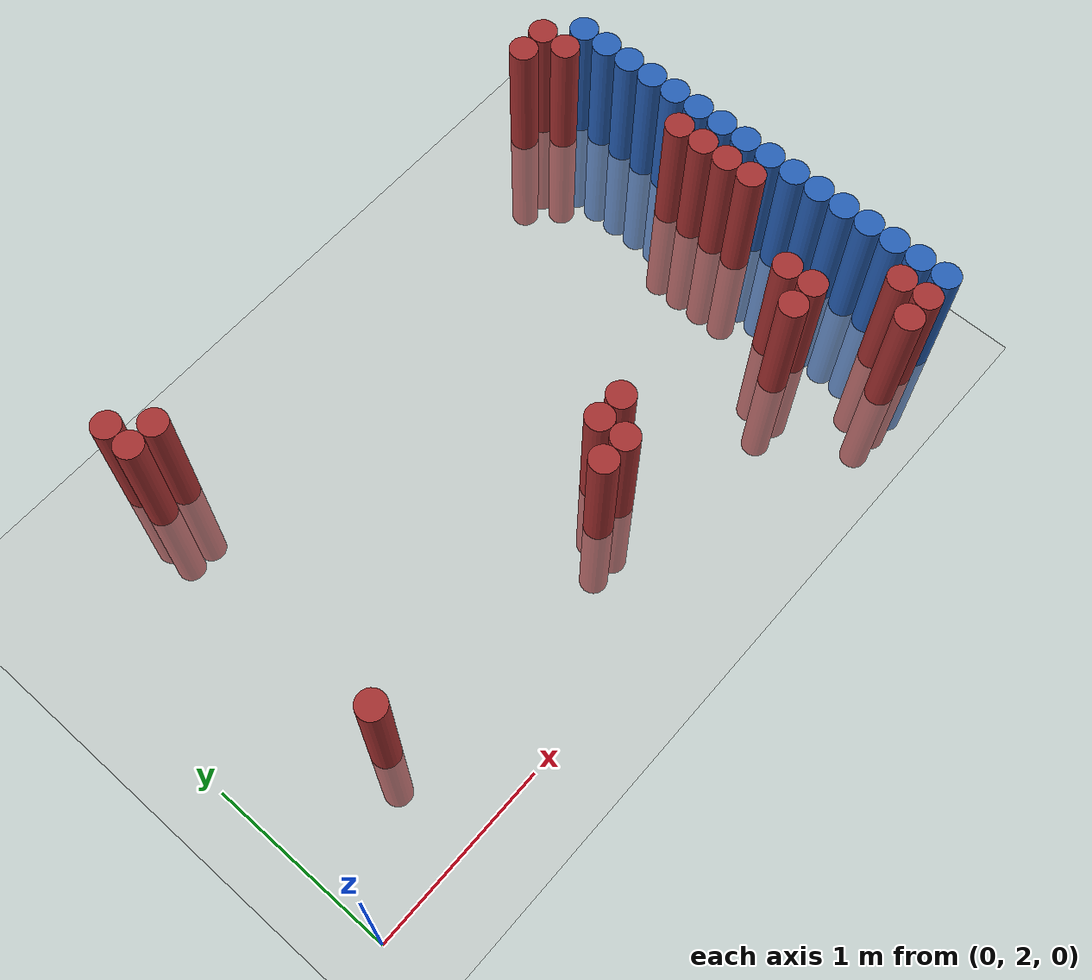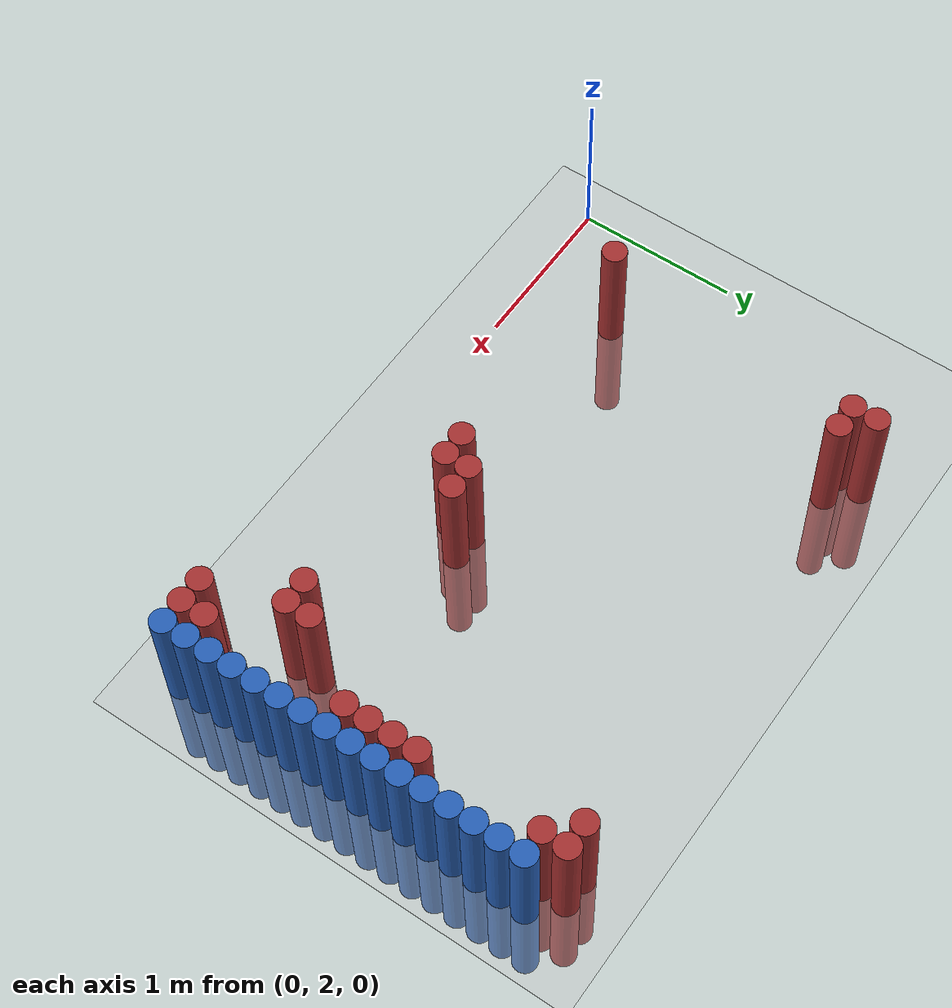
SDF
<sdf version="1.6">
 <world name="default">
  <model name="ground_plane">
   <static>1</static>
   <link name="link">
    <collision name="collision">
     <geometry><plane><normal>0 0 1</normal><size>100 100</size></plane></geometry>
     <surface><friction><ode><mu>100</mu><mu2>50</mu2></ode></friction></surface>
    </collision>
    <visual name="visual">
     <cast_shadows>0</cast_shadows>
     <geometry><plane><normal>0 0 1</normal><size>100 100</size></plane></geometry>
     <material>
      <script><uri>file://media/materials/scripts/gazebo.material</uri><name>Gazebo/Grey</name></script>
     </material>
    </visual>
   </link>
  </model>
  <model name="unit_cylinder_140">
   <static>1</static>
   <pose>3.925000 1.975000 0.000000 0.000000 0.000000 0.000000</pose>
   <link name="link">
    <inertial>
     <mass>1</mass>
     <inertia><ixx>0.145833</ixx><ixy>0</ixy><ixz>0</ixz><iyy>0.145833</iyy><iyz>0</iyz><izz>0.125</izz></inertia>
    </inertial>
    <collision name="collision">
     <geometry><cylinder><radius>0.075000</radius><length>1.5</length></cylinder></geometry>
    </collision>
    <visual name="visual">
     <geometry><cylinder><radius>0.075000</radius><length>1.5</length></cylinder></geometry>
     <material>
      <ambient>0.152000 0.379000 0.720000 1</ambient>
      <diffuse>0.152000 0.379000 0.720000 1</diffuse>
     </material>
     <material>
      <script><name>Gazebo/Grey</name><uri>file://media/materials/scripts/gazebo.material</uri></script>
     </material>
    </visual>
   </link>
  </model>
  <model name="unit_cylinder_142">
   <static>1</static>
   <pose>3.925000 2.125000 0.000000 0.000000 0.000000 0.000000</pose>
   <link name="link">
    <inertial>
     <mass>1</mass>
     <inertia><ixx>0.145833</ixx><ixy>0</ixy><ixz>0</ixz><iyy>0.145833</iyy><iyz>0</iyz><izz>0.125</izz></inertia>
    </inertial>
    <collision name="collision">
     <geometry><cylinder><radius>0.075000</radius><length>1.5</length></cylinder></geometry>
    </collision>
    <visual name="visual">
     <geometry><cylinder><radius>0.075000</radius><length>1.5</length></cylinder></geometry>
     <material>
      <ambient>0.152000 0.379000 0.720000 1</ambient>
      <diffuse>0.152000 0.379000 0.720000 1</diffuse>
     </material>
     <material>
      <script><name>Gazebo/Grey</name><uri>file://media/materials/scripts/gazebo.material</uri></script>
     </material>
    </visual>
   </link>
  </model>
  <model name="unit_cylinder_144">
   <static>1</static>
   <pose>3.925000 2.275000 0.000000 0.000000 0.000000 0.000000</pose>
   <link name="link">
    <inertial>
     <mass>1</mass>
     <inertia><ixx>0.145833</ixx><ixy>0</ixy><ixz>0</ixz><iyy>0.145833</iyy><iyz>0</iyz><izz>0.125</izz></inertia>
    </inertial>
    <collision name="collision">
     <geometry><cylinder><radius>0.075000</radius><length>1.5</length></cylinder></geometry>
    </collision>
    <visual name="visual">
     <geometry><cylinder><radius>0.075000</radius><length>1.5</length></cylinder></geometry>
     <material>
      <ambient>0.152000 0.379000 0.720000 1</ambient>
      <diffuse>0.152000 0.379000 0.720000 1</diffuse>
     </material>
     <material>
      <script><name>Gazebo/Grey</name><uri>file://media/materials/scripts/gazebo.material</uri></script>
     </material>
    </visual>
   </link>
  </model>
  <model name="unit_cylinder_146">
   <static>1</static>
   <pose>3.925000 2.425000 0.000000 0.000000 0.000000 0.000000</pose>
   <link name="link">
    <inertial>
     <mass>1</mass>
     <inertia><ixx>0.145833</ixx><ixy>0</ixy><ixz>0</ixz><iyy>0.145833</iyy><iyz>0</iyz><izz>0.125</izz></inertia>
    </inertial>
    <collision name="collision">
     <geometry><cylinder><radius>0.075000</radius><length>1.5</length></cylinder></geometry>
    </collision>
    <visual name="visual">
     <geometry><cylinder><radius>0.075000</radius><length>1.5</length></cylinder></geometry>
     <material>
      <ambient>0.152000 0.379000 0.720000 1</ambient>
      <diffuse>0.152000 0.379000 0.720000 1</diffuse>
     </material>
     <material>
      <script><name>Gazebo/Grey</name><uri>file://media/materials/scripts/gazebo.material</uri></script>
     </material>
    </visual>
   </link>
  </model>
  <model name="unit_cylinder_148">
   <static>1</static>
   <pose>3.925000 2.575000 0.000000 0.000000 0.000000 0.000000</pose>
   <link name="link">
    <inertial>
     <mass>1</mass>
     <inertia><ixx>0.145833</ixx><ixy>0</ixy><ixz>0</ixz><iyy>0.145833</iyy><iyz>0</iyz><izz>0.125</izz></inertia>
    </inertial>
    <collision name="collision">
     <geometry><cylinder><radius>0.075000</radius><length>1.5</length></cylinder></geometry>
    </collision>
    <visual name="visual">
     <geometry><cylinder><radius>0.075000</radius><length>1.5</length></cylinder></geometry>
     <material>
      <ambient>0.152000 0.379000 0.720000 1</ambient>
      <diffuse>0.152000 0.379000 0.720000 1</diffuse>
     </material>
     <material>
      <script><name>Gazebo/Grey</name><uri>file://media/materials/scripts/gazebo.material</uri></script>
     </material>
    </visual>
   </link>
  </model>
  <model name="unit_cylinder_150">
   <static>1</static>
   <pose>3.925000 2.725000 0.000000 0.000000 0.000000 0.000000</pose>
   <link name="link">
    <inertial>
     <mass>1</mass>
     <inertia><ixx>0.145833</ixx><ixy>0</ixy><ixz>0</ixz><iyy>0.145833</iyy><iyz>0</iyz><izz>0.125</izz></inertia>
    </inertial>
    <collision name="collision">
     <geometry><cylinder><radius>0.075000</radius><length>1.5</length></cylinder></geometry>
    </collision>
    <visual name="visual">
     <geometry><cylinder><radius>0.075000</radius><length>1.5</length></cylinder></geometry>
     <material>
      <ambient>0.152000 0.379000 0.720000 1</ambient>
      <diffuse>0.152000 0.379000 0.720000 1</diffuse>
     </material>
     <material>
      <script><name>Gazebo/Grey</name><uri>file://media/materials/scripts/gazebo.material</uri></script>
     </material>
    </visual>
   </link>
  </model>
  <model name="unit_cylinder_152">
   <static>1</static>
   <pose>3.925000 2.875000 0.000000 0.000000 0.000000 0.000000</pose>
   <link name="link">
    <inertial>
     <mass>1</mass>
     <inertia><ixx>0.145833</ixx><ixy>0</ixy><ixz>0</ixz><iyy>0.145833</iyy><iyz>0</iyz><izz>0.125</izz></inertia>
    </inertial>
    <collision name="collision">
     <geometry><cylinder><radius>0.075000</radius><length>1.5</length></cylinder></geometry>
    </collision>
    <visual name="visual">
     <geometry><cylinder><radius>0.075000</radius><length>1.5</length></cylinder></geometry>
     <material>
      <ambient>0.152000 0.379000 0.720000 1</ambient>
      <diffuse>0.152000 0.379000 0.720000 1</diffuse>
     </material>
     <material>
      <script><name>Gazebo/Grey</name><uri>file://media/materials/scripts/gazebo.material</uri></script>
     </material>
    </visual>
   </link>
  </model>
  <model name="unit_cylinder_154">
   <static>1</static>
   <pose>3.925000 3.025000 0.000000 0.000000 0.000000 0.000000</pose>
   <link name="link">
    <inertial>
     <mass>1</mass>
     <inertia><ixx>0.145833</ixx><ixy>0</ixy><ixz>0</ixz><iyy>0.145833</iyy><iyz>0</iyz><izz>0.125</izz></inertia>
    </inertial>
    <collision name="collision">
     <geometry><cylinder><radius>0.075000</radius><length>1.5</length></cylinder></geometry>
    </collision>
    <visual name="visual">
     <geometry><cylinder><radius>0.075000</radius><length>1.5</length></cylinder></geometry>
     <material>
      <ambient>0.152000 0.379000 0.720000 1</ambient>
      <diffuse>0.152000 0.379000 0.720000 1</diffuse>
     </material>
     <material>
      <script><name>Gazebo/Grey</name><uri>file://media/materials/scripts/gazebo.material</uri></script>
     </material>
    </visual>
   </link>
  </model>
  <model name="unit_cylinder_156">
   <static>1</static>
   <pose>3.925000 3.175000 0.000000 0.000000 0.000000 0.000000</pose>
   <link name="link">
    <inertial>
     <mass>1</mass>
     <inertia><ixx>0.145833</ixx><ixy>0</ixy><ixz>0</ixz><iyy>0.145833</iyy><iyz>0</iyz><izz>0.125</izz></inertia>
    </inertial>
    <collision name="collision">
     <geometry><cylinder><radius>0.075000</radius><length>1.5</length></cylinder></geometry>
    </collision>
    <visual name="visual">
     <geometry><cylinder><radius>0.075000</radius><length>1.5</length></cylinder></geometry>
     <material>
      <ambient>0.152000 0.379000 0.720000 1</ambient>
      <diffuse>0.152000 0.379000 0.720000 1</diffuse>
     </material>
     <material>
      <script><name>Gazebo/Grey</name><uri>file://media/materials/scripts/gazebo.material</uri></script>
     </material>
    </visual>
   </link>
  </model>
  <model name="unit_cylinder_158">
   <static>1</static>
   <pose>3.925000 3.325000 0.000000 0.000000 0.000000 0.000000</pose>
   <link name="link">
    <inertial>
     <mass>1</mass>
     <inertia><ixx>0.145833</ixx><ixy>0</ixy><ixz>0</ixz><iyy>0.145833</iyy><iyz>0</iyz><izz>0.125</izz></inertia>
    </inertial>
    <collision name="collision">
     <geometry><cylinder><radius>0.075000</radius><length>1.5</length></cylinder></geometry>
    </collision>
    <visual name="visual">
     <geometry><cylinder><radius>0.075000</radius><length>1.5</length></cylinder></geometry>
     <material>
      <ambient>0.152000 0.379000 0.720000 1</ambient>
      <diffuse>0.152000 0.379000 0.720000 1</diffuse>
     </material>
     <material>
      <script><name>Gazebo/Grey</name><uri>file://media/materials/scripts/gazebo.material</uri></script>
     </material>
    </visual>
   </link>
  </model>
  <model name="unit_cylinder_160">
   <static>1</static>
   <pose>3.925000 3.475000 0.000000 0.000000 0.000000 0.000000</pose>
   <link name="link">
    <inertial>
     <mass>1</mass>
     <inertia><ixx>0.145833</ixx><ixy>0</ixy><ixz>0</ixz><iyy>0.145833</iyy><iyz>0</iyz><izz>0.125</izz></inertia>
    </inertial>
    <collision name="collision">
     <geometry><cylinder><radius>0.075000</radius><length>1.5</length></cylinder></geometry>
    </collision>
    <visual name="visual">
     <geometry><cylinder><radius>0.075000</radius><length>1.5</length></cylinder></geometry>
     <material>
      <ambient>0.152000 0.379000 0.720000 1</ambient>
      <diffuse>0.152000 0.379000 0.720000 1</diffuse>
     </material>
     <material>
      <script><name>Gazebo/Grey</name><uri>file://media/materials/scripts/gazebo.material</uri></script>
     </material>
    </visual>
   </link>
  </model>
  <model name="unit_cylinder_162">
   <static>1</static>
   <pose>3.925000 3.625000 0.000000 0.000000 0.000000 0.000000</pose>
   <link name="link">
    <inertial>
     <mass>1</mass>
     <inertia><ixx>0.145833</ixx><ixy>0</ixy><ixz>0</ixz><iyy>0.145833</iyy><iyz>0</iyz><izz>0.125</izz></inertia>
    </inertial>
    <collision name="collision">
     <geometry><cylinder><radius>0.075000</radius><length>1.5</length></cylinder></geometry>
    </collision>
    <visual name="visual">
     <geometry><cylinder><radius>0.075000</radius><length>1.5</length></cylinder></geometry>
     <material>
      <ambient>0.152000 0.379000 0.720000 1</ambient>
      <diffuse>0.152000 0.379000 0.720000 1</diffuse>
     </material>
     <material>
      <script><name>Gazebo/Grey</name><uri>file://media/materials/scripts/gazebo.material</uri></script>
     </material>
    </visual>
   </link>
  </model>
  <model name="unit_cylinder_164">
   <static>1</static>
   <pose>3.925000 3.775000 0.000000 0.000000 0.000000 0.000000</pose>
   <link name="link">
    <inertial>
     <mass>1</mass>
     <inertia><ixx>0.145833</ixx><ixy>0</ixy><ixz>0</ixz><iyy>0.145833</iyy><iyz>0</iyz><izz>0.125</izz></inertia>
    </inertial>
    <collision name="collision">
     <geometry><cylinder><radius>0.075000</radius><length>1.5</length></cylinder></geometry>
    </collision>
    <visual name="visual">
     <geometry><cylinder><radius>0.075000</radius><length>1.5</length></cylinder></geometry>
     <material>
      <ambient>0.152000 0.379000 0.720000 1</ambient>
      <diffuse>0.152000 0.379000 0.720000 1</diffuse>
     </material>
     <material>
      <script><name>Gazebo/Grey</name><uri>file://media/materials/scripts/gazebo.material</uri></script>
     </material>
    </visual>
   </link>
  </model>
  <model name="unit_cylinder_166">
   <static>1</static>
   <pose>3.925000 3.925000 0.000000 0.000000 0.000000 0.000000</pose>
   <link name="link">
    <inertial>
     <mass>1</mass>
     <inertia><ixx>0.145833</ixx><ixy>0</ixy><ixz>0</ixz><iyy>0.145833</iyy><iyz>0</iyz><izz>0.125</izz></inertia>
    </inertial>
    <collision name="collision">
     <geometry><cylinder><radius>0.075000</radius><length>1.5</length></cylinder></geometry>
    </collision>
    <visual name="visual">
     <geometry><cylinder><radius>0.075000</radius><length>1.5</length></cylinder></geometry>
     <material>
      <ambient>0.152000 0.379000 0.720000 1</ambient>
      <diffuse>0.152000 0.379000 0.720000 1</diffuse>
     </material>
     <material>
      <script><name>Gazebo/Grey</name><uri>file://media/materials/scripts/gazebo.material</uri></script>
     </material>
    </visual>
   </link>
  </model>
  <model name="unit_cylinder_168">
   <static>1</static>
   <pose>3.925000 4.075000 0.000000 0.000000 0.000000 0.000000</pose>
   <link name="link">
    <inertial>
     <mass>1</mass>
     <inertia><ixx>0.145833</ixx><ixy>0</ixy><ixz>0</ixz><iyy>0.145833</iyy><iyz>0</iyz><izz>0.125</izz></inertia>
    </inertial>
    <collision name="collision">
     <geometry><cylinder><radius>0.075000</radius><length>1.5</length></cylinder></geometry>
    </collision>
    <visual name="visual">
     <geometry><cylinder><radius>0.075000</radius><length>1.5</length></cylinder></geometry>
     <material>
      <ambient>0.152000 0.379000 0.720000 1</ambient>
      <diffuse>0.152000 0.379000 0.720000 1</diffuse>
     </material>
     <material>
      <script><name>Gazebo/Grey</name><uri>file://media/materials/scripts/gazebo.material</uri></script>
     </material>
    </visual>
   </link>
  </model>
  <model name="unit_cylinder_170">
   <static>1</static>
   <pose>3.925000 4.225000 0.000000 0.000000 0.000000 0.000000</pose>
   <link name="link">
    <inertial>
     <mass>1</mass>
     <inertia><ixx>0.145833</ixx><ixy>0</ixy><ixz>0</ixz><iyy>0.145833</iyy><iyz>0</iyz><izz>0.125</izz></inertia>
    </inertial>
    <collision name="collision">
     <geometry><cylinder><radius>0.075000</radius><length>1.5</length></cylinder></geometry>
    </collision>
    <visual name="visual">
     <geometry><cylinder><radius>0.075000</radius><length>1.5</length></cylinder></geometry>
     <material>
      <ambient>0.152000 0.379000 0.720000 1</ambient>
      <diffuse>0.152000 0.379000 0.720000 1</diffuse>
     </material>
     <material>
      <script><name>Gazebo/Grey</name><uri>file://media/materials/scripts/gazebo.material</uri></script>
     </material>
    </visual>
   </link>
  </model>
  <model name="unit_cylinder_417">
   <static>1</static>
   <pose>0.625000 2.575000 0.000000 0.000000 0.000000 0.000000</pose>
   <link name="link">
    <inertial>
     <mass>1</mass>
     <inertia><ixx>0.145833</ixx><ixy>0</ixy><ixz>0</ixz><iyy>0.145833</iyy><iyz>0</iyz><izz>0.125</izz></inertia>
    </inertial>
    <collision name="collision">
     <geometry><cylinder><radius>0.075000</radius><length>1.5</length></cylinder></geometry>
    </collision>
    <visual name="visual">
     <geometry><cylinder><radius>0.075000</radius><length>1.5</length></cylinder></geometry>
     <material>
      <ambient>0.648000 0.192000 0.192000 1</ambient>
      <diffuse>0.648000 0.192000 0.192000 1</diffuse>
     </material>
     <material>
      <script><name>Gazebo/Grey</name><uri>file://media/materials/scripts/gazebo.material</uri></script>
     </material>
    </visual>
   </link>
  </model>
  <model name="unit_cylinder_421">
   <static>1</static>
   <pose>0.775000 4.225000 0.000000 0.000000 0.000000 0.000000</pose>
   <link name="link">
    <inertial>
     <mass>1</mass>
     <inertia><ixx>0.145833</ixx><ixy>0</ixy><ixz>0</ixz><iyy>0.145833</iyy><iyz>0</iyz><izz>0.125</izz></inertia>
    </inertial>
    <collision name="collision">
     <geometry><cylinder><radius>0.075000</radius><length>1.5</length></cylinder></geometry>
    </collision>
    <visual name="visual">
     <geometry><cylinder><radius>0.075000</radius><length>1.5</length></cylinder></geometry>
     <material>
      <ambient>0.648000 0.192000 0.192000 1</ambient>
      <diffuse>0.648000 0.192000 0.192000 1</diffuse>
     </material>
     <material>
      <script><name>Gazebo/Grey</name><uri>file://media/materials/scripts/gazebo.material</uri></script>
     </material>
    </visual>
   </link>
  </model>
  <model name="unit_cylinder_422">
   <static>1</static>
   <pose>0.775000 4.375000 0.000000 0.000000 0.000000 0.000000</pose>
   <link name="link">
    <inertial>
     <mass>1</mass>
     <inertia><ixx>0.145833</ixx><ixy>0</ixy><ixz>0</ixz><iyy>0.145833</iyy><iyz>0</iyz><izz>0.125</izz></inertia>
    </inertial>
    <collision name="collision">
     <geometry><cylinder><radius>0.075000</radius><length>1.5</length></cylinder></geometry>
    </collision>
    <visual name="visual">
     <geometry><cylinder><radius>0.075000</radius><length>1.5</length></cylinder></geometry>
     <material>
      <ambient>0.648000 0.192000 0.192000 1</ambient>
      <diffuse>0.648000 0.192000 0.192000 1</diffuse>
     </material>
     <material>
      <script><name>Gazebo/Grey</name><uri>file://media/materials/scripts/gazebo.material</uri></script>
     </material>
    </visual>
   </link>
  </model>
  <model name="unit_cylinder_426">
   <static>1</static>
   <pose>0.925000 4.225000 0.000000 0.000000 0.000000 0.000000</pose>
   <link name="link">
    <inertial>
     <mass>1</mass>
     <inertia><ixx>0.145833</ixx><ixy>0</ixy><ixz>0</ixz><iyy>0.145833</iyy><iyz>0</iyz><izz>0.125</izz></inertia>
    </inertial>
    <collision name="collision">
     <geometry><cylinder><radius>0.075000</radius><length>1.5</length></cylinder></geometry>
    </collision>
    <visual name="visual">
     <geometry><cylinder><radius>0.075000</radius><length>1.5</length></cylinder></geometry>
     <material>
      <ambient>0.648000 0.192000 0.192000 1</ambient>
      <diffuse>0.648000 0.192000 0.192000 1</diffuse>
     </material>
     <material>
      <script><name>Gazebo/Grey</name><uri>file://media/materials/scripts/gazebo.material</uri></script>
     </material>
    </visual>
   </link>
  </model>
  <model name="unit_cylinder_445">
   <static>1</static>
   <pose>2.125000 2.575000 0.000000 0.000000 0.000000 0.000000</pose>
   <link name="link">
    <inertial>
     <mass>1</mass>
     <inertia><ixx>0.145833</ixx><ixy>0</ixy><ixz>0</ixz><iyy>0.145833</iyy><iyz>0</iyz><izz>0.125</izz></inertia>
    </inertial>
    <collision name="collision">
     <geometry><cylinder><radius>0.075000</radius><length>1.5</length></cylinder></geometry>
    </collision>
    <visual name="visual">
     <geometry><cylinder><radius>0.075000</radius><length>1.5</length></cylinder></geometry>
     <material>
      <ambient>0.648000 0.192000 0.192000 1</ambient>
      <diffuse>0.648000 0.192000 0.192000 1</diffuse>
     </material>
     <material>
      <script><name>Gazebo/Grey</name><uri>file://media/materials/scripts/gazebo.material</uri></script>
     </material>
    </visual>
   </link>
  </model>
  <model name="unit_cylinder_449">
   <static>1</static>
   <pose>2.275000 2.575000 0.000000 0.000000 0.000000 0.000000</pose>
   <link name="link">
    <inertial>
     <mass>1</mass>
     <inertia><ixx>0.145833</ixx><ixy>0</ixy><ixz>0</ixz><iyy>0.145833</iyy><iyz>0</iyz><izz>0.125</izz></inertia>
    </inertial>
    <collision name="collision">
     <geometry><cylinder><radius>0.075000</radius><length>1.5</length></cylinder></geometry>
    </collision>
    <visual name="visual">
     <geometry><cylinder><radius>0.075000</radius><length>1.5</length></cylinder></geometry>
     <material>
      <ambient>0.648000 0.192000 0.192000 1</ambient>
      <diffuse>0.648000 0.192000 0.192000 1</diffuse>
     </material>
     <material>
      <script><name>Gazebo/Grey</name><uri>file://media/materials/scripts/gazebo.material</uri></script>
     </material>
    </visual>
   </link>
  </model>
  <model name="unit_cylinder_450">
   <static>1</static>
   <pose>2.275000 2.725000 0.000000 0.000000 0.000000 0.000000</pose>
   <link name="link">
    <inertial>
     <mass>1</mass>
     <inertia><ixx>0.145833</ixx><ixy>0</ixy><ixz>0</ixz><iyy>0.145833</iyy><iyz>0</iyz><izz>0.125</izz></inertia>
    </inertial>
    <collision name="collision">
     <geometry><cylinder><radius>0.075000</radius><length>1.5</length></cylinder></geometry>
    </collision>
    <visual name="visual">
     <geometry><cylinder><radius>0.075000</radius><length>1.5</length></cylinder></geometry>
     <material>
      <ambient>0.648000 0.192000 0.192000 1</ambient>
      <diffuse>0.648000 0.192000 0.192000 1</diffuse>
     </material>
     <material>
      <script><name>Gazebo/Grey</name><uri>file://media/materials/scripts/gazebo.material</uri></script>
     </material>
    </visual>
   </link>
  </model>
  <model name="unit_cylinder_452">
   <static>1</static>
   <pose>2.425000 2.725000 0.000000 0.000000 0.000000 0.000000</pose>
   <link name="link">
    <inertial>
     <mass>1</mass>
     <inertia><ixx>0.145833</ixx><ixy>0</ixy><ixz>0</ixz><iyy>0.145833</iyy><iyz>0</iyz><izz>0.125</izz></inertia>
    </inertial>
    <collision name="collision">
     <geometry><cylinder><radius>0.075000</radius><length>1.5</length></cylinder></geometry>
    </collision>
    <visual name="visual">
     <geometry><cylinder><radius>0.075000</radius><length>1.5</length></cylinder></geometry>
     <material>
      <ambient>0.648000 0.192000 0.192000 1</ambient>
      <diffuse>0.648000 0.192000 0.192000 1</diffuse>
     </material>
     <material>
      <script><name>Gazebo/Grey</name><uri>file://media/materials/scripts/gazebo.material</uri></script>
     </material>
    </visual>
   </link>
  </model>
  <model name="unit_cylinder_475">
   <static>1</static>
   <pose>3.325000 2.425000 0.000000 0.000000 0.000000 0.000000</pose>
   <link name="link">
    <inertial>
     <mass>1</mass>
     <inertia><ixx>0.145833</ixx><ixy>0</ixy><ixz>0</ixz><iyy>0.145833</iyy><iyz>0</iyz><izz>0.125</izz></inertia>
    </inertial>
    <collision name="collision">
     <geometry><cylinder><radius>0.075000</radius><length>1.5</length></cylinder></geometry>
    </collision>
    <visual name="visual">
     <geometry><cylinder><radius>0.075000</radius><length>1.5</length></cylinder></geometry>
     <material>
      <ambient>0.648000 0.192000 0.192000 1</ambient>
      <diffuse>0.648000 0.192000 0.192000 1</diffuse>
     </material>
     <material>
      <script><name>Gazebo/Grey</name><uri>file://media/materials/scripts/gazebo.material</uri></script>
     </material>
    </visual>
   </link>
  </model>
  <model name="unit_cylinder_482">
   <static>1</static>
   <pose>3.475000 2.425000 0.000000 0.000000 0.000000 0.000000</pose>
   <link name="link">
    <inertial>
     <mass>1</mass>
     <inertia><ixx>0.145833</ixx><ixy>0</ixy><ixz>0</ixz><iyy>0.145833</iyy><iyz>0</iyz><izz>0.125</izz></inertia>
    </inertial>
    <collision name="collision">
     <geometry><cylinder><radius>0.075000</radius><length>1.5</length></cylinder></geometry>
    </collision>
    <visual name="visual">
     <geometry><cylinder><radius>0.075000</radius><length>1.5</length></cylinder></geometry>
     <material>
      <ambient>0.648000 0.192000 0.192000 1</ambient>
      <diffuse>0.648000 0.192000 0.192000 1</diffuse>
     </material>
     <material>
      <script><name>Gazebo/Grey</name><uri>file://media/materials/scripts/gazebo.material</uri></script>
     </material>
    </visual>
   </link>
  </model>
  <model name="unit_cylinder_483">
   <static>1</static>
   <pose>3.475000 2.575000 0.000000 0.000000 0.000000 0.000000</pose>
   <link name="link">
    <inertial>
     <mass>1</mass>
     <inertia><ixx>0.145833</ixx><ixy>0</ixy><ixz>0</ixz><iyy>0.145833</iyy><iyz>0</iyz><izz>0.125</izz></inertia>
    </inertial>
    <collision name="collision">
     <geometry><cylinder><radius>0.075000</radius><length>1.5</length></cylinder></geometry>
    </collision>
    <visual name="visual">
     <geometry><cylinder><radius>0.075000</radius><length>1.5</length></cylinder></geometry>
     <material>
      <ambient>0.648000 0.192000 0.192000 1</ambient>
      <diffuse>0.648000 0.192000 0.192000 1</diffuse>
     </material>
     <material>
      <script><name>Gazebo/Grey</name><uri>file://media/materials/scripts/gazebo.material</uri></script>
     </material>
    </visual>
   </link>
  </model>
  <model name="unit_cylinder_494">
   <static>1</static>
   <pose>3.625000 1.975000 0.000000 0.000000 0.000000 0.000000</pose>
   <link name="link">
    <inertial>
     <mass>1</mass>
     <inertia><ixx>0.145833</ixx><ixy>0</ixy><ixz>0</ixz><iyy>0.145833</iyy><iyz>0</iyz><izz>0.125</izz></inertia>
    </inertial>
    <collision name="collision">
     <geometry><cylinder><radius>0.075000</radius><length>1.5</length></cylinder></geometry>
    </collision>
    <visual name="visual">
     <geometry><cylinder><radius>0.075000</radius><length>1.5</length></cylinder></geometry>
     <material>
      <ambient>0.648000 0.192000 0.192000 1</ambient>
      <diffuse>0.648000 0.192000 0.192000 1</diffuse>
     </material>
     <material>
      <script><name>Gazebo/Grey</name><uri>file://media/materials/scripts/gazebo.material</uri></script>
     </material>
    </visual>
   </link>
  </model>
  <model name="unit_cylinder_495">
   <static>1</static>
   <pose>3.625000 4.375000 0.000000 0.000000 0.000000 0.000000</pose>
   <link name="link">
    <inertial>
     <mass>1</mass>
     <inertia><ixx>0.145833</ixx><ixy>0</ixy><ixz>0</ixz><iyy>0.145833</iyy><iyz>0</iyz><izz>0.125</izz></inertia>
    </inertial>
    <collision name="collision">
     <geometry><cylinder><radius>0.075000</radius><length>1.5</length></cylinder></geometry>
    </collision>
    <visual name="visual">
     <geometry><cylinder><radius>0.075000</radius><length>1.5</length></cylinder></geometry>
     <material>
      <ambient>0.648000 0.192000 0.192000 1</ambient>
      <diffuse>0.648000 0.192000 0.192000 1</diffuse>
     </material>
     <material>
      <script><name>Gazebo/Grey</name><uri>file://media/materials/scripts/gazebo.material</uri></script>
     </material>
    </visual>
   </link>
  </model>
  <model name="unit_cylinder_521">
   <static>1</static>
   <pose>3.775000 1.975000 0.000000 0.000000 0.000000 0.000000</pose>
   <link name="link">
    <inertial>
     <mass>1</mass>
     <inertia><ixx>0.145833</ixx><ixy>0</ixy><ixz>0</ixz><iyy>0.145833</iyy><iyz>0</iyz><izz>0.125</izz></inertia>
    </inertial>
    <collision name="collision">
     <geometry><cylinder><radius>0.075000</radius><length>1.5</length></cylinder></geometry>
    </collision>
    <visual name="visual">
     <geometry><cylinder><radius>0.075000</radius><length>1.5</length></cylinder></geometry>
     <material>
      <ambient>0.648000 0.192000 0.192000 1</ambient>
      <diffuse>0.648000 0.192000 0.192000 1</diffuse>
     </material>
     <material>
      <script><name>Gazebo/Grey</name><uri>file://media/materials/scripts/gazebo.material</uri></script>
     </material>
    </visual>
   </link>
  </model>
  <model name="unit_cylinder_522">
   <static>1</static>
   <pose>3.775000 2.125000 0.000000 0.000000 0.000000 0.000000</pose>
   <link name="link">
    <inertial>
     <mass>1</mass>
     <inertia><ixx>0.145833</ixx><ixy>0</ixy><ixz>0</ixz><iyy>0.145833</iyy><iyz>0</iyz><izz>0.125</izz></inertia>
    </inertial>
    <collision name="collision">
     <geometry><cylinder><radius>0.075000</radius><length>1.5</length></cylinder></geometry>
    </collision>
    <visual name="visual">
     <geometry><cylinder><radius>0.075000</radius><length>1.5</length></cylinder></geometry>
     <material>
      <ambient>0.648000 0.192000 0.192000 1</ambient>
      <diffuse>0.648000 0.192000 0.192000 1</diffuse>
     </material>
     <material>
      <script><name>Gazebo/Grey</name><uri>file://media/materials/scripts/gazebo.material</uri></script>
     </material>
    </visual>
   </link>
  </model>
  <model name="unit_cylinder_523">
   <static>1</static>
   <pose>3.775000 3.025000 0.000000 0.000000 0.000000 0.000000</pose>
   <link name="link">
    <inertial>
     <mass>1</mass>
     <inertia><ixx>0.145833</ixx><ixy>0</ixy><ixz>0</ixz><iyy>0.145833</iyy><iyz>0</iyz><izz>0.125</izz></inertia>
    </inertial>
    <collision name="collision">
     <geometry><cylinder><radius>0.075000</radius><length>1.5</length></cylinder></geometry>
    </collision>
    <visual name="visual">
     <geometry><cylinder><radius>0.075000</radius><length>1.5</length></cylinder></geometry>
     <material>
      <ambient>0.648000 0.192000 0.192000 1</ambient>
      <diffuse>0.648000 0.192000 0.192000 1</diffuse>
     </material>
     <material>
      <script><name>Gazebo/Grey</name><uri>file://media/materials/scripts/gazebo.material</uri></script>
     </material>
    </visual>
   </link>
  </model>
  <model name="unit_cylinder_524">
   <static>1</static>
   <pose>3.775000 3.175000 0.000000 0.000000 0.000000 0.000000</pose>
   <link name="link">
    <inertial>
     <mass>1</mass>
     <inertia><ixx>0.145833</ixx><ixy>0</ixy><ixz>0</ixz><iyy>0.145833</iyy><iyz>0</iyz><izz>0.125</izz></inertia>
    </inertial>
    <collision name="collision">
     <geometry><cylinder><radius>0.075000</radius><length>1.5</length></cylinder></geometry>
    </collision>
    <visual name="visual">
     <geometry><cylinder><radius>0.075000</radius><length>1.5</length></cylinder></geometry>
     <material>
      <ambient>0.648000 0.192000 0.192000 1</ambient>
      <diffuse>0.648000 0.192000 0.192000 1</diffuse>
     </material>
     <material>
      <script><name>Gazebo/Grey</name><uri>file://media/materials/scripts/gazebo.material</uri></script>
     </material>
    </visual>
   </link>
  </model>
  <model name="unit_cylinder_525">
   <static>1</static>
   <pose>3.775000 3.325000 0.000000 0.000000 0.000000 0.000000</pose>
   <link name="link">
    <inertial>
     <mass>1</mass>
     <inertia><ixx>0.145833</ixx><ixy>0</ixy><ixz>0</ixz><iyy>0.145833</iyy><iyz>0</iyz><izz>0.125</izz></inertia>
    </inertial>
    <collision name="collision">
     <geometry><cylinder><radius>0.075000</radius><length>1.5</length></cylinder></geometry>
    </collision>
    <visual name="visual">
     <geometry><cylinder><radius>0.075000</radius><length>1.5</length></cylinder></geometry>
     <material>
      <ambient>0.648000 0.192000 0.192000 1</ambient>
      <diffuse>0.648000 0.192000 0.192000 1</diffuse>
     </material>
     <material>
      <script><name>Gazebo/Grey</name><uri>file://media/materials/scripts/gazebo.material</uri></script>
     </material>
    </visual>
   </link>
  </model>
  <model name="unit_cylinder_526">
   <static>1</static>
   <pose>3.775000 3.475000 0.000000 0.000000 0.000000 0.000000</pose>
   <link name="link">
    <inertial>
     <mass>1</mass>
     <inertia><ixx>0.145833</ixx><ixy>0</ixy><ixz>0</ixz><iyy>0.145833</iyy><iyz>0</iyz><izz>0.125</izz></inertia>
    </inertial>
    <collision name="collision">
     <geometry><cylinder><radius>0.075000</radius><length>1.5</length></cylinder></geometry>
    </collision>
    <visual name="visual">
     <geometry><cylinder><radius>0.075000</radius><length>1.5</length></cylinder></geometry>
     <material>
      <ambient>0.648000 0.192000 0.192000 1</ambient>
      <diffuse>0.648000 0.192000 0.192000 1</diffuse>
     </material>
     <material>
      <script><name>Gazebo/Grey</name><uri>file://media/materials/scripts/gazebo.material</uri></script>
     </material>
    </visual>
   </link>
  </model>
  <model name="unit_cylinder_527">
   <static>1</static>
   <pose>3.775000 4.225000 0.000000 0.000000 0.000000 0.000000</pose>
   <link name="link">
    <inertial>
     <mass>1</mass>
     <inertia><ixx>0.145833</ixx><ixy>0</ixy><ixz>0</ixz><iyy>0.145833</iyy><iyz>0</iyz><izz>0.125</izz></inertia>
    </inertial>
    <collision name="collision">
     <geometry><cylinder><radius>0.075000</radius><length>1.5</length></cylinder></geometry>
    </collision>
    <visual name="visual">
     <geometry><cylinder><radius>0.075000</radius><length>1.5</length></cylinder></geometry>
     <material>
      <ambient>0.648000 0.192000 0.192000 1</ambient>
      <diffuse>0.648000 0.192000 0.192000 1</diffuse>
     </material>
     <material>
      <script><name>Gazebo/Grey</name><uri>file://media/materials/scripts/gazebo.material</uri></script>
     </material>
    </visual>
   </link>
  </model>
  <model name="unit_cylinder_528">
   <static>1</static>
   <pose>3.775000 4.375000 0.000000 0.000000 0.000000 0.000000</pose>
   <link name="link">
    <inertial>
     <mass>1</mass>
     <inertia><ixx>0.145833</ixx><ixy>0</ixy><ixz>0</ixz><iyy>0.145833</iyy><iyz>0</iyz><izz>0.125</izz></inertia>
    </inertial>
    <collision name="collision">
     <geometry><cylinder><radius>0.075000</radius><length>1.5</length></cylinder></geometry>
    </collision>
    <visual name="visual">
     <geometry><cylinder><radius>0.075000</radius><length>1.5</length></cylinder></geometry>
     <material>
      <ambient>0.648000 0.192000 0.192000 1</ambient>
      <diffuse>0.648000 0.192000 0.192000 1</diffuse>
     </material>
     <material>
      <script><name>Gazebo/Grey</name><uri>file://media/materials/scripts/gazebo.material</uri></script>
     </material>
    </visual>
   </link>
  </model>
  <model name="unit_cylinder_560">
   <static>1</static>
   <pose>3.925000 1.975000 0.000000 0.000000 0.000000 0.000000</pose>
   <link name="link">
    <inertial>
     <mass>1</mass>
     <inertia><ixx>0.145833</ixx><ixy>0</ixy><ixz>0</ixz><iyy>0.145833</iyy><iyz>0</iyz><izz>0.125</izz></inertia>
    </inertial>
    <collision name="collision">
     <geometry><cylinder><radius>0.075000</radius><length>1.5</length></cylinder></geometry>
    </collision>
    <visual name="visual">
     <geometry><cylinder><radius>0.075000</radius><length>1.5</length></cylinder></geometry>
     <material>
      <ambient>0.152000 0.379000 0.720000 1</ambient>
      <diffuse>0.152000 0.379000 0.720000 1</diffuse>
     </material>
     <material>
      <script><name>Gazebo/Grey</name><uri>file://media/materials/scripts/gazebo.material</uri></script>
     </material>
    </visual>
   </link>
  </model>
  <model name="unit_cylinder_561">
   <static>1</static>
   <pose>3.925000 2.125000 0.000000 0.000000 0.000000 0.000000</pose>
   <link name="link">
    <inertial>
     <mass>1</mass>
     <inertia><ixx>0.145833</ixx><ixy>0</ixy><ixz>0</ixz><iyy>0.145833</iyy><iyz>0</iyz><izz>0.125</izz></inertia>
    </inertial>
    <collision name="collision">
     <geometry><cylinder><radius>0.075000</radius><length>1.5</length></cylinder></geometry>
    </collision>
    <visual name="visual">
     <geometry><cylinder><radius>0.075000</radius><length>1.5</length></cylinder></geometry>
     <material>
      <ambient>0.152000 0.379000 0.720000 1</ambient>
      <diffuse>0.152000 0.379000 0.720000 1</diffuse>
     </material>
     <material>
      <script><name>Gazebo/Grey</name><uri>file://media/materials/scripts/gazebo.material</uri></script>
     </material>
    </visual>
   </link>
  </model>
  <model name="unit_cylinder_562">
   <static>1</static>
   <pose>3.925000 2.275000 0.000000 0.000000 0.000000 0.000000</pose>
   <link name="link">
    <inertial>
     <mass>1</mass>
     <inertia><ixx>0.145833</ixx><ixy>0</ixy><ixz>0</ixz><iyy>0.145833</iyy><iyz>0</iyz><izz>0.125</izz></inertia>
    </inertial>
    <collision name="collision">
     <geometry><cylinder><radius>0.075000</radius><length>1.5</length></cylinder></geometry>
    </collision>
    <visual name="visual">
     <geometry><cylinder><radius>0.075000</radius><length>1.5</length></cylinder></geometry>
     <material>
      <ambient>0.152000 0.379000 0.720000 1</ambient>
      <diffuse>0.152000 0.379000 0.720000 1</diffuse>
     </material>
     <material>
      <script><name>Gazebo/Grey</name><uri>file://media/materials/scripts/gazebo.material</uri></script>
     </material>
    </visual>
   </link>
  </model>
  <model name="unit_cylinder_563">
   <static>1</static>
   <pose>3.925000 2.425000 0.000000 0.000000 0.000000 0.000000</pose>
   <link name="link">
    <inertial>
     <mass>1</mass>
     <inertia><ixx>0.145833</ixx><ixy>0</ixy><ixz>0</ixz><iyy>0.145833</iyy><iyz>0</iyz><izz>0.125</izz></inertia>
    </inertial>
    <collision name="collision">
     <geometry><cylinder><radius>0.075000</radius><length>1.5</length></cylinder></geometry>
    </collision>
    <visual name="visual">
     <geometry><cylinder><radius>0.075000</radius><length>1.5</length></cylinder></geometry>
     <material>
      <ambient>0.152000 0.379000 0.720000 1</ambient>
      <diffuse>0.152000 0.379000 0.720000 1</diffuse>
     </material>
     <material>
      <script><name>Gazebo/Grey</name><uri>file://media/materials/scripts/gazebo.material</uri></script>
     </material>
    </visual>
   </link>
  </model>
  <model name="unit_cylinder_564">
   <static>1</static>
   <pose>3.925000 2.575000 0.000000 0.000000 0.000000 0.000000</pose>
   <link name="link">
    <inertial>
     <mass>1</mass>
     <inertia><ixx>0.145833</ixx><ixy>0</ixy><ixz>0</ixz><iyy>0.145833</iyy><iyz>0</iyz><izz>0.125</izz></inertia>
    </inertial>
    <collision name="collision">
     <geometry><cylinder><radius>0.075000</radius><length>1.5</length></cylinder></geometry>
    </collision>
    <visual name="visual">
     <geometry><cylinder><radius>0.075000</radius><length>1.5</length></cylinder></geometry>
     <material>
      <ambient>0.152000 0.379000 0.720000 1</ambient>
      <diffuse>0.152000 0.379000 0.720000 1</diffuse>
     </material>
     <material>
      <script><name>Gazebo/Grey</name><uri>file://media/materials/scripts/gazebo.material</uri></script>
     </material>
    </visual>
   </link>
  </model>
  <model name="unit_cylinder_565">
   <static>1</static>
   <pose>3.925000 2.725000 0.000000 0.000000 0.000000 0.000000</pose>
   <link name="link">
    <inertial>
     <mass>1</mass>
     <inertia><ixx>0.145833</ixx><ixy>0</ixy><ixz>0</ixz><iyy>0.145833</iyy><iyz>0</iyz><izz>0.125</izz></inertia>
    </inertial>
    <collision name="collision">
     <geometry><cylinder><radius>0.075000</radius><length>1.5</length></cylinder></geometry>
    </collision>
    <visual name="visual">
     <geometry><cylinder><radius>0.075000</radius><length>1.5</length></cylinder></geometry>
     <material>
      <ambient>0.152000 0.379000 0.720000 1</ambient>
      <diffuse>0.152000 0.379000 0.720000 1</diffuse>
     </material>
     <material>
      <script><name>Gazebo/Grey</name><uri>file://media/materials/scripts/gazebo.material</uri></script>
     </material>
    </visual>
   </link>
  </model>
  <model name="unit_cylinder_566">
   <static>1</static>
   <pose>3.925000 2.875000 0.000000 0.000000 0.000000 0.000000</pose>
   <link name="link">
    <inertial>
     <mass>1</mass>
     <inertia><ixx>0.145833</ixx><ixy>0</ixy><ixz>0</ixz><iyy>0.145833</iyy><iyz>0</iyz><izz>0.125</izz></inertia>
    </inertial>
    <collision name="collision">
     <geometry><cylinder><radius>0.075000</radius><length>1.5</length></cylinder></geometry>
    </collision>
    <visual name="visual">
     <geometry><cylinder><radius>0.075000</radius><length>1.5</length></cylinder></geometry>
     <material>
      <ambient>0.152000 0.379000 0.720000 1</ambient>
      <diffuse>0.152000 0.379000 0.720000 1</diffuse>
     </material>
     <material>
      <script><name>Gazebo/Grey</name><uri>file://media/materials/scripts/gazebo.material</uri></script>
     </material>
    </visual>
   </link>
  </model>
  <model name="unit_cylinder_567">
   <static>1</static>
   <pose>3.925000 3.025000 0.000000 0.000000 0.000000 0.000000</pose>
   <link name="link">
    <inertial>
     <mass>1</mass>
     <inertia><ixx>0.145833</ixx><ixy>0</ixy><ixz>0</ixz><iyy>0.145833</iyy><iyz>0</iyz><izz>0.125</izz></inertia>
    </inertial>
    <collision name="collision">
     <geometry><cylinder><radius>0.075000</radius><length>1.5</length></cylinder></geometry>
    </collision>
    <visual name="visual">
     <geometry><cylinder><radius>0.075000</radius><length>1.5</length></cylinder></geometry>
     <material>
      <ambient>0.152000 0.379000 0.720000 1</ambient>
      <diffuse>0.152000 0.379000 0.720000 1</diffuse>
     </material>
     <material>
      <script><name>Gazebo/Grey</name><uri>file://media/materials/scripts/gazebo.material</uri></script>
     </material>
    </visual>
   </link>
  </model>
  <model name="unit_cylinder_568">
   <static>1</static>
   <pose>3.925000 3.175000 0.000000 0.000000 0.000000 0.000000</pose>
   <link name="link">
    <inertial>
     <mass>1</mass>
     <inertia><ixx>0.145833</ixx><ixy>0</ixy><ixz>0</ixz><iyy>0.145833</iyy><iyz>0</iyz><izz>0.125</izz></inertia>
    </inertial>
    <collision name="collision">
     <geometry><cylinder><radius>0.075000</radius><length>1.5</length></cylinder></geometry>
    </collision>
    <visual name="visual">
     <geometry><cylinder><radius>0.075000</radius><length>1.5</length></cylinder></geometry>
     <material>
      <ambient>0.152000 0.379000 0.720000 1</ambient>
      <diffuse>0.152000 0.379000 0.720000 1</diffuse>
     </material>
     <material>
      <script><name>Gazebo/Grey</name><uri>file://media/materials/scripts/gazebo.material</uri></script>
     </material>
    </visual>
   </link>
  </model>
  <model name="unit_cylinder_569">
   <static>1</static>
   <pose>3.925000 3.325000 0.000000 0.000000 0.000000 0.000000</pose>
   <link name="link">
    <inertial>
     <mass>1</mass>
     <inertia><ixx>0.145833</ixx><ixy>0</ixy><ixz>0</ixz><iyy>0.145833</iyy><iyz>0</iyz><izz>0.125</izz></inertia>
    </inertial>
    <collision name="collision">
     <geometry><cylinder><radius>0.075000</radius><length>1.5</length></cylinder></geometry>
    </collision>
    <visual name="visual">
     <geometry><cylinder><radius>0.075000</radius><length>1.5</length></cylinder></geometry>
     <material>
      <ambient>0.152000 0.379000 0.720000 1</ambient>
      <diffuse>0.152000 0.379000 0.720000 1</diffuse>
     </material>
     <material>
      <script><name>Gazebo/Grey</name><uri>file://media/materials/scripts/gazebo.material</uri></script>
     </material>
    </visual>
   </link>
  </model>
  <model name="unit_cylinder_570">
   <static>1</static>
   <pose>3.925000 3.475000 0.000000 0.000000 0.000000 0.000000</pose>
   <link name="link">
    <inertial>
     <mass>1</mass>
     <inertia><ixx>0.145833</ixx><ixy>0</ixy><ixz>0</ixz><iyy>0.145833</iyy><iyz>0</iyz><izz>0.125</izz></inertia>
    </inertial>
    <collision name="collision">
     <geometry><cylinder><radius>0.075000</radius><length>1.5</length></cylinder></geometry>
    </collision>
    <visual name="visual">
     <geometry><cylinder><radius>0.075000</radius><length>1.5</length></cylinder></geometry>
     <material>
      <ambient>0.152000 0.379000 0.720000 1</ambient>
      <diffuse>0.152000 0.379000 0.720000 1</diffuse>
     </material>
     <material>
      <script><name>Gazebo/Grey</name><uri>file://media/materials/scripts/gazebo.material</uri></script>
     </material>
    </visual>
   </link>
  </model>
  <model name="unit_cylinder_571">
   <static>1</static>
   <pose>3.925000 3.625000 0.000000 0.000000 0.000000 0.000000</pose>
   <link name="link">
    <inertial>
     <mass>1</mass>
     <inertia><ixx>0.145833</ixx><ixy>0</ixy><ixz>0</ixz><iyy>0.145833</iyy><iyz>0</iyz><izz>0.125</izz></inertia>
    </inertial>
    <collision name="collision">
     <geometry><cylinder><radius>0.075000</radius><length>1.5</length></cylinder></geometry>
    </collision>
    <visual name="visual">
     <geometry><cylinder><radius>0.075000</radius><length>1.5</length></cylinder></geometry>
     <material>
      <ambient>0.152000 0.379000 0.720000 1</ambient>
      <diffuse>0.152000 0.379000 0.720000 1</diffuse>
     </material>
     <material>
      <script><name>Gazebo/Grey</name><uri>file://media/materials/scripts/gazebo.material</uri></script>
     </material>
    </visual>
   </link>
  </model>
  <model name="unit_cylinder_572">
   <static>1</static>
   <pose>3.925000 3.775000 0.000000 0.000000 0.000000 0.000000</pose>
   <link name="link">
    <inertial>
     <mass>1</mass>
     <inertia><ixx>0.145833</ixx><ixy>0</ixy><ixz>0</ixz><iyy>0.145833</iyy><iyz>0</iyz><izz>0.125</izz></inertia>
    </inertial>
    <collision name="collision">
     <geometry><cylinder><radius>0.075000</radius><length>1.5</length></cylinder></geometry>
    </collision>
    <visual name="visual">
     <geometry><cylinder><radius>0.075000</radius><length>1.5</length></cylinder></geometry>
     <material>
      <ambient>0.152000 0.379000 0.720000 1</ambient>
      <diffuse>0.152000 0.379000 0.720000 1</diffuse>
     </material>
     <material>
      <script><name>Gazebo/Grey</name><uri>file://media/materials/scripts/gazebo.material</uri></script>
     </material>
    </visual>
   </link>
  </model>
  <model name="unit_cylinder_573">
   <static>1</static>
   <pose>3.925000 3.925000 0.000000 0.000000 0.000000 0.000000</pose>
   <link name="link">
    <inertial>
     <mass>1</mass>
     <inertia><ixx>0.145833</ixx><ixy>0</ixy><ixz>0</ixz><iyy>0.145833</iyy><iyz>0</iyz><izz>0.125</izz></inertia>
    </inertial>
    <collision name="collision">
     <geometry><cylinder><radius>0.075000</radius><length>1.5</length></cylinder></geometry>
    </collision>
    <visual name="visual">
     <geometry><cylinder><radius>0.075000</radius><length>1.5</length></cylinder></geometry>
     <material>
      <ambient>0.152000 0.379000 0.720000 1</ambient>
      <diffuse>0.152000 0.379000 0.720000 1</diffuse>
     </material>
     <material>
      <script><name>Gazebo/Grey</name><uri>file://media/materials/scripts/gazebo.material</uri></script>
     </material>
    </visual>
   </link>
  </model>
  <model name="unit_cylinder_574">
   <static>1</static>
   <pose>3.925000 4.075000 0.000000 0.000000 0.000000 0.000000</pose>
   <link name="link">
    <inertial>
     <mass>1</mass>
     <inertia><ixx>0.145833</ixx><ixy>0</ixy><ixz>0</ixz><iyy>0.145833</iyy><iyz>0</iyz><izz>0.125</izz></inertia>
    </inertial>
    <collision name="collision">
     <geometry><cylinder><radius>0.075000</radius><length>1.5</length></cylinder></geometry>
    </collision>
    <visual name="visual">
     <geometry><cylinder><radius>0.075000</radius><length>1.5</length></cylinder></geometry>
     <material>
      <ambient>0.152000 0.379000 0.720000 1</ambient>
      <diffuse>0.152000 0.379000 0.720000 1</diffuse>
     </material>
     <material>
      <script><name>Gazebo/Grey</name><uri>file://media/materials/scripts/gazebo.material</uri></script>
     </material>
    </visual>
   </link>
  </model>
  <model name="unit_cylinder_575">
   <static>1</static>
   <pose>3.925000 4.225000 0.000000 0.000000 0.000000 0.000000</pose>
   <link name="link">
    <inertial>
     <mass>1</mass>
     <inertia><ixx>0.145833</ixx><ixy>0</ixy><ixz>0</ixz><iyy>0.145833</iyy><iyz>0</iyz><izz>0.125</izz></inertia>
    </inertial>
    <collision name="collision">
     <geometry><cylinder><radius>0.075000</radius><length>1.5</length></cylinder></geometry>
    </collision>
    <visual name="visual">
     <geometry><cylinder><radius>0.075000</radius><length>1.5</length></cylinder></geometry>
     <material>
      <ambient>0.152000 0.379000 0.720000 1</ambient>
      <diffuse>0.152000 0.379000 0.720000 1</diffuse>
     </material>
     <material>
      <script><name>Gazebo/Grey</name><uri>file://media/materials/scripts/gazebo.material</uri></script>
     </material>
    </visual>
   </link>
  </model>
 </world>
</sdf>
